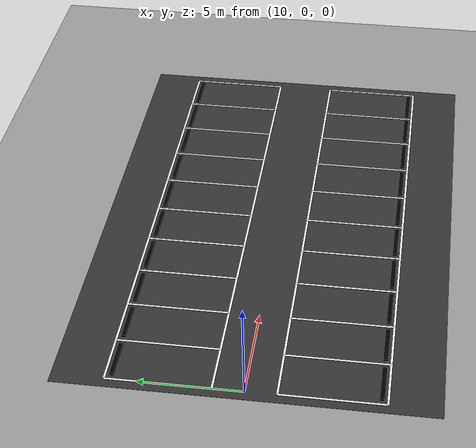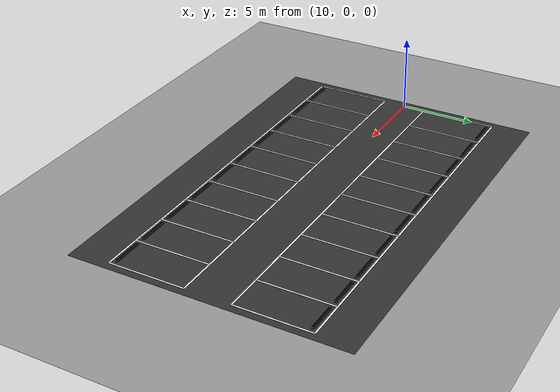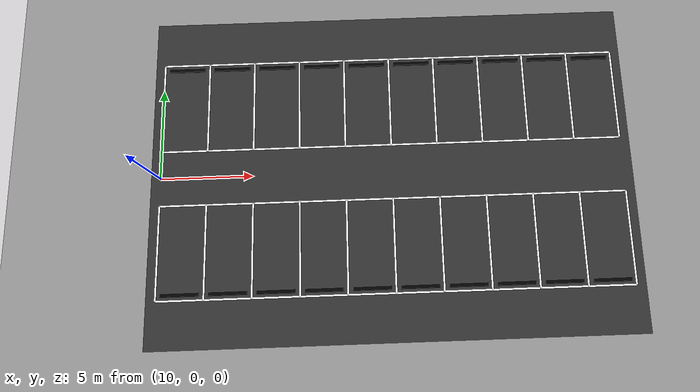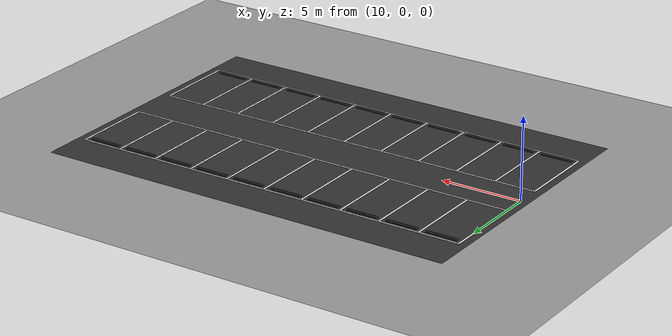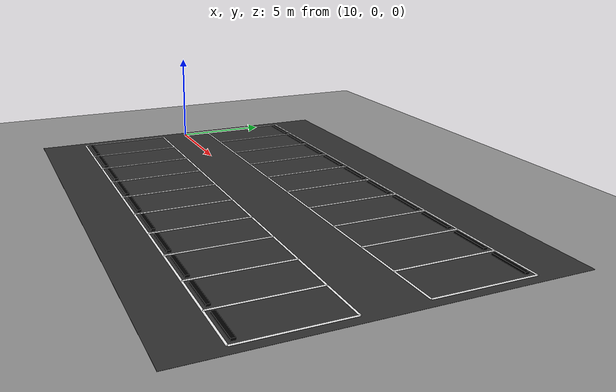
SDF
<sdf version="1.9">
 <world name="mega_parking_lot_20">
  <physics name="1ms" type="ignore">
   <max_step_size>0.001</max_step_size>
   <real_time_factor>1.0</real_time_factor>
  </physics>
  <plugin filename="gz-sim-physics-system" name="gz::sim::systems::Physics"/>
  <plugin filename="gz-sim-sensors-system" name="gz::sim::systems::Sensors">
   <render_engine>ogre2</render_engine>
  </plugin>
  <plugin filename="gz-sim-user-commands-system" name="gz::sim::systems::UserCommands"/>
  <plugin filename="gz-sim-scene-broadcaster-system" name="gz::sim::systems::SceneBroadcaster"/>
  <plugin filename="gz-sim-imu-system" name="gz::sim::systems::Imu"/>
  <plugin filename="gz-sim-navsat-system" name="gz::sim::systems::NavSat"/>
  <plugin filename="gz-sim-ardupilot-controls-system" name="gz::sim::systems::ArduPilotControls"/>
  <plugin filename="gz-sim-ardupilot-get-motors-forces-system" name="gz::sim::systems::ArduPilotGetMotorsForces"/>
  <light type="directional" name="sun">
   <pose>0 0 10 0 0 0</pose>
   <diffuse>1 1 1 1</diffuse>
   <direction>-0.5 0.1 -0.9</direction>
  </light>
  <model name="base_ground">
   <static>true</static>
   <link name="link">
    <visual name="v">
     <geometry><plane><normal>0 0 1</normal><size>200 200</size></plane></geometry>
     <material><ambient>0.6 0.6 0.6 1</ambient><diffuse>0.6 0.6 0.6 1</diffuse></material>
    </visual>
    <collision name="c"><geometry><plane><normal>0 0 1</normal><size>200 200</size></plane></geometry></collision>
   </link>
  </model>
  <model name="parking_base">
   <static>true</static>
   <pose>22.5 0 0.005 0 0 0</pose>
   <link name="link">
    <visual name="v">
     <geometry><box><size>26 18 0.01</size></box></geometry>
     <material><ambient>0.2 0.2 0.2 1</ambient><diffuse>0.2 0.2 0.2 1</diffuse></material>
    </visual>
   </link>
  </model>
  <model name="markings_and_stoppers">
   <static>true</static>
   <pose>10 0 0.01 0 0 0</pose>
   <link name="link">
    <visual name="road_l">
     <pose>12.5 1.5 0.01 0 0 0</pose>
     <geometry><box><size>25 0.1 0.01</size></box></geometry>
     <material><ambient>1 1 1 1</ambient><emissive>1 1 1 1</emissive></material>
    </visual>
    <visual name="road_r">
     <pose>12.5 -1.5 0.01 0 0 0</pose>
     <geometry><box><size>25 0.1 0.01</size></box></geometry>
     <material><ambient>1 1 1 1</ambient><emissive>1 1 1 1</emissive></material>
    </visual>
    <visual name="back_l">
     <pose>12.5 6.5 0.01 0 0 0</pose>
     <geometry><box><size>25 0.1 0.01</size></box></geometry>
     <material><ambient>1 1 1 1</ambient></material>
    </visual>
    <visual name="back_r">
     <pose>12.5 -6.5 0.01 0 0 0</pose>
     <geometry><box><size>25 0.1 0.01</size></box></geometry>
     <material><ambient>1 1 1 1</ambient></material>
    </visual>
    <visual name="l_v0">
     <pose>0 4 0.01 0 0 1.57</pose>
     <geometry><box><size>5 0.1 0.015</size></box></geometry>
     <material><ambient>1 1 1 1</ambient></material>
    </visual>
    <visual name="l_v1">
     <pose>2.5 4 0.01 0 0 1.57</pose>
     <geometry><box><size>5 0.1 0.015</size></box></geometry>
     <material><ambient>1 1 1 1</ambient></material>
    </visual>
    <visual name="l_v2">
     <pose>5.0 4 0.01 0 0 1.57</pose>
     <geometry><box><size>5 0.1 0.015</size></box></geometry>
     <material><ambient>1 1 1 1</ambient></material>
    </visual>
    <visual name="l_v3">
     <pose>7.5 4 0.01 0 0 1.57</pose>
     <geometry><box><size>5 0.1 0.015</size></box></geometry>
     <material><ambient>1 1 1 1</ambient></material>
    </visual>
    <visual name="l_v4">
     <pose>10.0 4 0.01 0 0 1.57</pose>
     <geometry><box><size>5 0.1 0.015</size></box></geometry>
     <material><ambient>1 1 1 1</ambient></material>
    </visual>
    <visual name="l_v5">
     <pose>12.5 4 0.01 0 0 1.57</pose>
     <geometry><box><size>5 0.1 0.015</size></box></geometry>
     <material><ambient>1 1 1 1</ambient></material>
    </visual>
    <visual name="l_v6">
     <pose>15.0 4 0.01 0 0 1.57</pose>
     <geometry><box><size>5 0.1 0.015</size></box></geometry>
     <material><ambient>1 1 1 1</ambient></material>
    </visual>
    <visual name="l_v7">
     <pose>17.5 4 0.01 0 0 1.57</pose>
     <geometry><box><size>5 0.1 0.015</size></box></geometry>
     <material><ambient>1 1 1 1</ambient></material>
    </visual>
    <visual name="l_v8">
     <pose>20.0 4 0.01 0 0 1.57</pose>
     <geometry><box><size>5 0.1 0.015</size></box></geometry>
     <material><ambient>1 1 1 1</ambient></material>
    </visual>
    <visual name="l_v9">
     <pose>22.5 4 0.01 0 0 1.57</pose>
     <geometry><box><size>5 0.1 0.015</size></box></geometry>
     <material><ambient>1 1 1 1</ambient></material>
    </visual>
    <visual name="l_v10">
     <pose>25.0 4 0.01 0 0 1.57</pose>
     <geometry><box><size>5 0.1 0.015</size></box></geometry>
     <material><ambient>1 1 1 1</ambient></material>
    </visual>
    <visual name="r_v0">
     <pose>0 -4 0.01 0 0 1.57</pose>
     <geometry><box><size>5 0.1 0.015</size></box></geometry>
     <material><ambient>1 1 1 1</ambient></material>
    </visual>
    <visual name="r_v1">
     <pose>2.5 -4 0.01 0 0 1.57</pose>
     <geometry><box><size>5 0.1 0.015</size></box></geometry>
     <material><ambient>1 1 1 1</ambient></material>
    </visual>
    <visual name="r_v2">
     <pose>5.0 -4 0.01 0 0 1.57</pose>
     <geometry><box><size>5 0.1 0.015</size></box></geometry>
     <material><ambient>1 1 1 1</ambient></material>
    </visual>
    <visual name="r_v3">
     <pose>7.5 -4 0.01 0 0 1.57</pose>
     <geometry><box><size>5 0.1 0.015</size></box></geometry>
     <material><ambient>1 1 1 1</ambient></material>
    </visual>
    <visual name="r_v4">
     <pose>10.0 -4 0.01 0 0 1.57</pose>
     <geometry><box><size>5 0.1 0.015</size></box></geometry>
     <material><ambient>1 1 1 1</ambient></material>
    </visual>
    <visual name="r_v5">
     <pose>12.5 -4 0.01 0 0 1.57</pose>
     <geometry><box><size>5 0.1 0.015</size></box></geometry>
     <material><ambient>1 1 1 1</ambient></material>
    </visual>
    <visual name="r_v6">
     <pose>15.0 -4 0.01 0 0 1.57</pose>
     <geometry><box><size>5 0.1 0.015</size></box></geometry>
     <material><ambient>1 1 1 1</ambient></material>
    </visual>
    <visual name="r_v7">
     <pose>17.5 -4 0.01 0 0 1.57</pose>
     <geometry><box><size>5 0.1 0.015</size></box></geometry>
     <material><ambient>1 1 1 1</ambient></material>
    </visual>
    <visual name="r_v8">
     <pose>20.0 -4 0.01 0 0 1.57</pose>
     <geometry><box><size>5 0.1 0.015</size></box></geometry>
     <material><ambient>1 1 1 1</ambient></material>
    </visual>
    <visual name="r_v9">
     <pose>22.5 -4 0.01 0 0 1.57</pose>
     <geometry><box><size>5 0.1 0.015</size></box></geometry>
     <material><ambient>1 1 1 1</ambient></material>
    </visual>
    <visual name="r_v10">
     <pose>25.0 -4 0.01 0 0 1.57</pose>
     <geometry><box><size>5 0.1 0.015</size></box></geometry>
     <material><ambient>1 1 1 1</ambient></material>
    </visual>
    <visual name="st_l1">
     <pose>1.25 6.2 0.05 0 0 0</pose>
     <geometry><box><size>2.0 0.2 0.1</size></box></geometry>
     <material><ambient>0 0 0 1</ambient><diffuse>0 0 0 1</diffuse></material>
    </visual>
    <visual name="st_l2">
     <pose>3.75 6.2 0.05 0 0 0</pose>
     <geometry><box><size>2.0 0.2 0.1</size></box></geometry>
     <material><ambient>0 0 0 1</ambient></material>
    </visual>
    <visual name="st_l3">
     <pose>6.25 6.2 0.05 0 0 0</pose>
     <geometry><box><size>2.0 0.2 0.1</size></box></geometry>
     <material><ambient>0 0 0 1</ambient></material>
    </visual>
    <visual name="st_l4">
     <pose>8.75 6.2 0.05 0 0 0</pose>
     <geometry><box><size>2.0 0.2 0.1</size></box></geometry>
     <material><ambient>0 0 0 1</ambient></material>
    </visual>
    <visual name="st_l5">
     <pose>11.25 6.2 0.05 0 0 0</pose>
     <geometry><box><size>2.0 0.2 0.1</size></box></geometry>
     <material><ambient>0 0 0 1</ambient></material>
    </visual>
    <visual name="st_l6">
     <pose>13.75 6.2 0.05 0 0 0</pose>
     <geometry><box><size>2.0 0.2 0.1</size></box></geometry>
     <material><ambient>0 0 0 1</ambient></material>
    </visual>
    <visual name="st_l7">
     <pose>16.25 6.2 0.05 0 0 0</pose>
     <geometry><box><size>2.0 0.2 0.1</size></box></geometry>
     <material><ambient>0 0 0 1</ambient></material>
    </visual>
    <visual name="st_l8">
     <pose>18.75 6.2 0.05 0 0 0</pose>
     <geometry><box><size>2.0 0.2 0.1</size></box></geometry>
     <material><ambient>0 0 0 1</ambient></material>
    </visual>
    <visual name="st_l9">
     <pose>21.25 6.2 0.05 0 0 0</pose>
     <geometry><box><size>2.0 0.2 0.1</size></box></geometry>
     <material><ambient>0 0 0 1</ambient></material>
    </visual>
    <visual name="st_l10">
     <pose>23.75 6.2 0.05 0 0 0</pose>
     <geometry><box><size>2.0 0.2 0.1</size></box></geometry>
     <material><ambient>0 0 0 1</ambient></material>
    </visual>
    <visual name="st_r1">
     <pose>1.25 -6.2 0.05 0 0 0</pose>
     <geometry><box><size>2.0 0.2 0.1</size></box></geometry>
     <material><ambient>0 0 0 1</ambient></material>
    </visual>
    <visual name="st_r2">
     <pose>3.75 -6.2 0.05 0 0 0</pose>
     <geometry><box><size>2.0 0.2 0.1</size></box></geometry>
     <material><ambient>0 0 0 1</ambient></material>
    </visual>
    <visual name="st_r3">
     <pose>6.25 -6.2 0.05 0 0 0</pose>
     <geometry><box><size>2.0 0.2 0.1</size></box></geometry>
     <material><ambient>0 0 0 1</ambient></material>
    </visual>
    <visual name="st_r4">
     <pose>8.75 -6.2 0.05 0 0 0</pose>
     <geometry><box><size>2.0 0.2 0.1</size></box></geometry>
     <material><ambient>0 0 0 1</ambient></material>
    </visual>
    <visual name="st_r5">
     <pose>11.25 -6.2 0.05 0 0 0</pose>
     <geometry><box><size>2.0 0.2 0.1</size></box></geometry>
     <material><ambient>0 0 0 1</ambient></material>
    </visual>
    <visual name="st_r6">
     <pose>13.75 -6.2 0.05 0 0 0</pose>
     <geometry><box><size>2.0 0.2 0.1</size></box></geometry>
     <material><ambient>0 0 0 1</ambient></material>
    </visual>
    <visual name="st_r7">
     <pose>16.25 -6.2 0.05 0 0 0</pose>
     <geometry><box><size>2.0 0.2 0.1</size></box></geometry>
     <material><ambient>0 0 0 1</ambient></material>
    </visual>
    <visual name="st_r8">
     <pose>18.75 -6.2 0.05 0 0 0</pose>
     <geometry><box><size>2.0 0.2 0.1</size></box></geometry>
     <material><ambient>0 0 0 1</ambient></material>
    </visual>
    <visual name="st_r9">
     <pose>21.25 -6.2 0.05 0 0 0</pose>
     <geometry><box><size>2.0 0.2 0.1</size></box></geometry>
     <material><ambient>0 0 0 1</ambient></material>
    </visual>
    <visual name="st_r10">
     <pose>23.75 -6.2 0.05 0 0 0</pose>
     <geometry><box><size>2.0 0.2 0.1</size></box></geometry>
     <material><ambient>0 0 0 1</ambient></material>
    </visual>
   </link>
  </model>
 </world>
</sdf>
